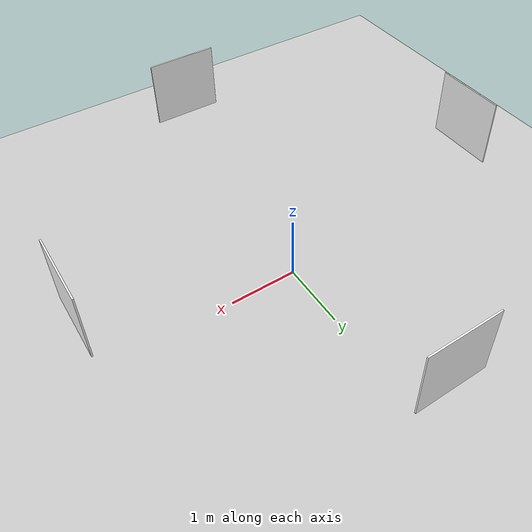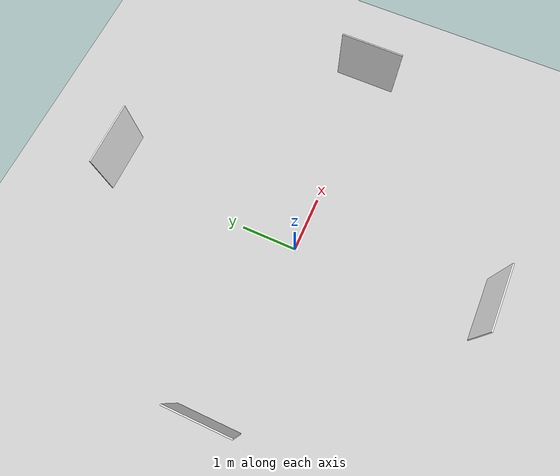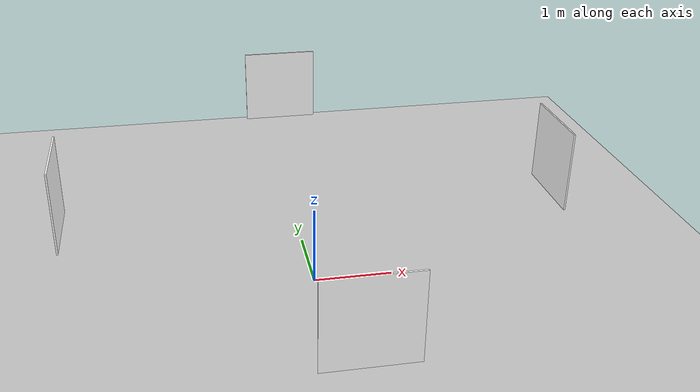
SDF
<?xml version="1.0" encoding="UTF-8"?>
<sdf version="1.9">
  <world name="kiosk_4walls">
    <physics type="ode">
      <max_step_size>0.004</max_step_size>
      <real_time_factor>1.0</real_time_factor>
      <real_time_update_rate>250</real_time_update_rate>
    </physics>
    <gravity>0 0 -9.8</gravity>
    <magnetic_field>6e-06 2.3e-05 -4.2e-05</magnetic_field>
    <atmosphere type="adiabatic"/>
    <scene>
      <grid>false</grid>
      <ambient>0.4 0.4 0.4 1</ambient>
      <background>0.7 0.7 0.7 1</background>
      <shadows>true</shadows>
    </scene>
    <model name="ground_plane">
      <static>true</static>
      <link name="link">
        <collision name="collision">
          <geometry>
            <plane>
              <normal>0 0 1</normal>
              <size>1 1</size>
            </plane>
          </geometry>
          <surface>
            <friction>
              <ode/>
            </friction>
            <bounce/>
            <contact/>
          </surface>
        </collision>
        <visual name="visual">
          <geometry>
            <plane>
              <normal>0 0 1</normal>
              <size>500 500</size>
            </plane>
          </geometry>
          <material>
            <ambient>0.8 0.8 0.8 1</ambient>
            <diffuse>0.8 0.8 0.8 1</diffuse>
            <specular>0.8 0.8 0.8 1</specular>
          </material>
        </visual>
        <pose>0 0 0 0 -0 0</pose>
        <inertial>
          <pose>0 0 0 0 -0 0</pose>
          <mass>1</mass>
          <inertia>
            <ixx>1</ixx>
            <ixy>0</ixy>
            <ixz>0</ixz>
            <iyy>1</iyy>
            <iyz>0</iyz>
            <izz>1</izz>
          </inertia>
        </inertial>
        <enable_wind>false</enable_wind>
      </link>
      <pose>0 0 0 0 -0 0</pose>
      <self_collide>false</self_collide>
    </model>
    <light name="sunUTC" type="directional">
      <pose>0 0 500 0 -0 0</pose>
      <cast_shadows>true</cast_shadows>
      <intensity>1</intensity>
      <direction>0.001 0.625 -0.78</direction>
      <diffuse>0.904 0.904 0.904 1</diffuse>
      <specular>0.271 0.271 0.271 1</specular>
      <attenuation>
        <range>2000</range>
        <linear>0</linear>
        <constant>1</constant>
        <quadratic>0</quadratic>
      </attenuation>
      <spot>
        <inner_angle>0</inner_angle>
        <outer_angle>0</outer_angle>
        <falloff>0</falloff>
      </spot>
    </light>
    <spherical_coordinates>
      <surface_model>EARTH_WGS84</surface_model>
      <world_frame_orientation>ENU</world_frame_orientation>
      <latitude_deg>47.397971057728974</latitude_deg>
      <longitude_deg> 8.546163739800146</longitude_deg>
      <elevation>0</elevation>
    </spherical_coordinates>

    <!-- north (+Y), ids 0-3, yaw 0 -->
    <include>
      <uri>model://kiosk_wall</uri>
      <name>kiosk_wall_north</name>
      <pose>0 3 1.5 0 0 0</pose>
    </include>

    <!-- east (+X), ids 4-7, yaw -90deg so local -Y (marked face) points -X (inward) -->
    <include>
      <uri>model://kiosk_wall_east</uri>
      <name>kiosk_wall_east</name>
      <pose>3 0 1.5 0 0 -1.570796</pose>
    </include>

    <!-- south (-Y), ids 8-11, yaw 180deg so local -Y (marked face) points +Y (inward) -->
    <include>
      <uri>model://kiosk_wall_south</uri>
      <name>kiosk_wall_south</name>
      <pose>0 -3 1.5 0 0 3.141593</pose>
    </include>

    <!-- west (-X), ids 12-15, yaw 90deg so local -Y (marked face) points +X (inward) -->
    <include>
      <uri>model://kiosk_wall_west</uri>
      <name>kiosk_wall_west</name>
      <pose>-3 0 1.5 0 0 1.570796</pose>
    </include>
  </world>
</sdf>

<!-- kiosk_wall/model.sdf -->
<sdf version='1.9'>
  <model name='kiosk_wall'>
    <static>true</static>
    <link name='panel'>
      <collision name='collision'>
        <geometry>
          <box>
            <size>1 0.02 1</size>
          </box>
        </geometry>
      </collision>
      <visual name='visual'>
        <geometry>
          <box>
            <size>1 0.02 1</size>
          </box>
        </geometry>
        <material>
          <diffuse>1 1 1 1</diffuse>
          <specular>0.4 0.4 0.4 1</specular>
          <pbr>
            <metal>
              <albedo_map>model://kiosk_wall/kiosk_wall_marker.png</albedo_map>
            </metal>
          </pbr>
        </material>
      </visual>
    </link>
  </model>
</sdf>

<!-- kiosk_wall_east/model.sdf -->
<sdf version='1.9'>
  <model name='kiosk_wall_east'>
    <static>true</static>
    <link name='panel'>
      <collision name='collision'>
        <geometry>
          <box>
            <size>1 0.02 1</size>
          </box>
        </geometry>
      </collision>
      <visual name='visual'>
        <geometry>
          <box>
            <size>1 0.02 1</size>
          </box>
        </geometry>
        <material>
          <diffuse>1 1 1 1</diffuse>
          <specular>0.4 0.4 0.4 1</specular>
          <pbr>
            <metal>
              <albedo_map>model://kiosk_wall_east/kiosk_wall_east_marker.png</albedo_map>
            </metal>
          </pbr>
        </material>
      </visual>
    </link>
  </model>
</sdf>

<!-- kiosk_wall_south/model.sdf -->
<sdf version='1.9'>
  <model name='kiosk_wall_south'>
    <static>true</static>
    <link name='panel'>
      <collision name='collision'>
        <geometry>
          <box>
            <size>1 0.02 1</size>
          </box>
        </geometry>
      </collision>
      <visual name='visual'>
        <geometry>
          <box>
            <size>1 0.02 1</size>
          </box>
        </geometry>
        <material>
          <diffuse>1 1 1 1</diffuse>
          <specular>0.4 0.4 0.4 1</specular>
          <pbr>
            <metal>
              <albedo_map>model://kiosk_wall_south/kiosk_wall_south_marker.png</albedo_map>
            </metal>
          </pbr>
        </material>
      </visual>
    </link>
  </model>
</sdf>

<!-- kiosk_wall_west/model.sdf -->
<sdf version='1.9'>
  <model name='kiosk_wall_west'>
    <static>true</static>
    <link name='panel'>
      <collision name='collision'>
        <geometry>
          <box>
            <size>1 0.02 1</size>
          </box>
        </geometry>
      </collision>
      <visual name='visual'>
        <geometry>
          <box>
            <size>1 0.02 1</size>
          </box>
        </geometry>
        <material>
          <diffuse>1 1 1 1</diffuse>
          <specular>0.4 0.4 0.4 1</specular>
          <pbr>
            <metal>
              <albedo_map>model://kiosk_wall_west/kiosk_wall_west_marker.png</albedo_map>
            </metal>
          </pbr>
        </material>
      </visual>
    </link>
  </model>
</sdf>
